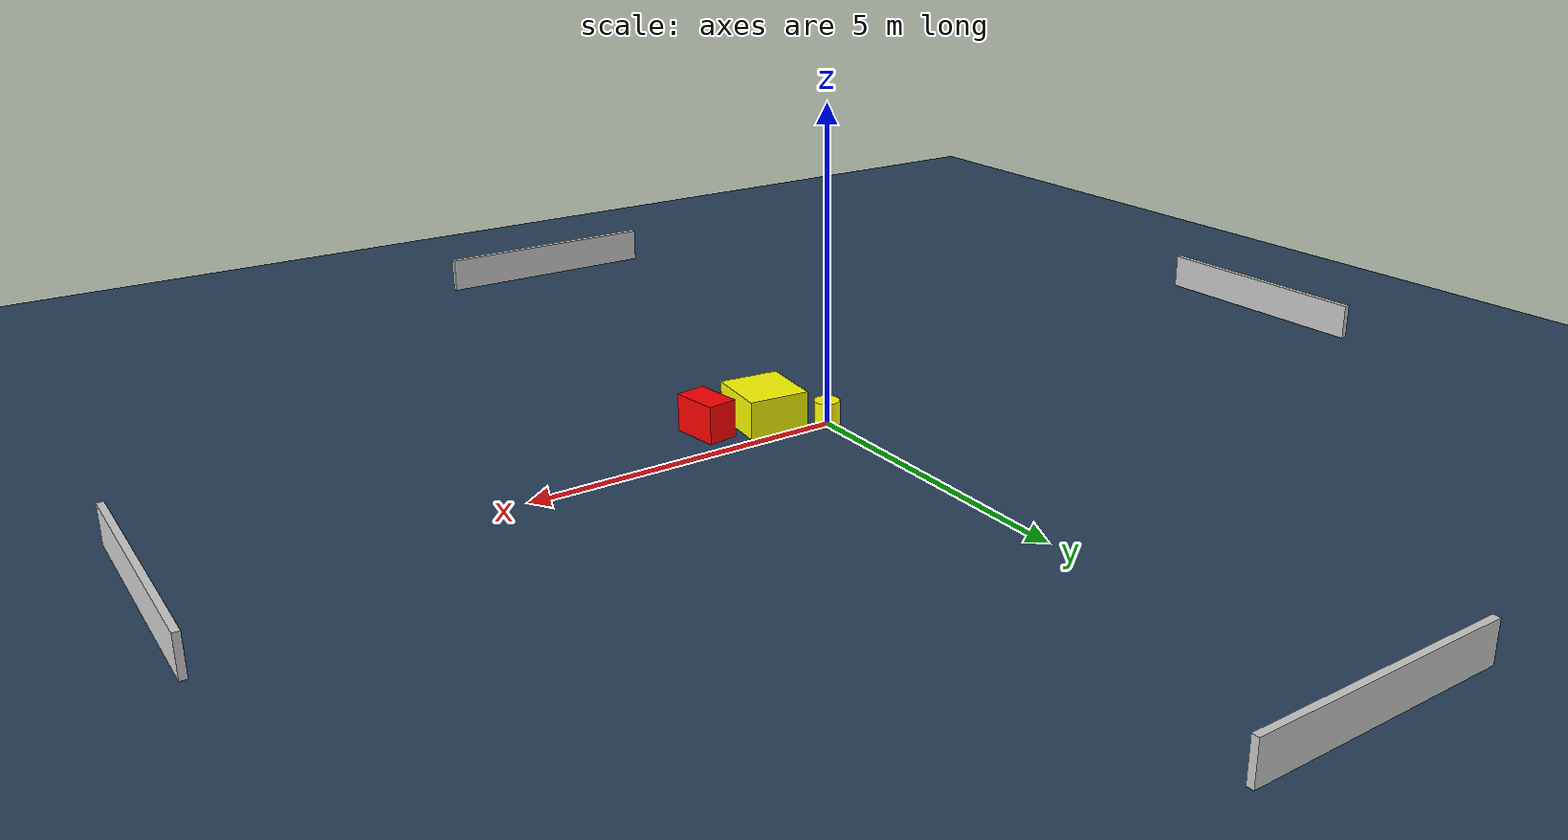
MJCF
<?xml version="1.0" ?>
<mujoco model="generated_environment">
  <option timestep="0.01" integrator="RK4" cone="elliptic"/>
  <default>
    <geom density="1"/>
  </default>
  <asset>
    <texture builtin="gradient" height="3072" name="skybox" rgb1="0.3 0.5 0.7" rgb2="0 0 0" type="skybox" width="512"/>
    <texture builtin="checker" height="300" name="groundplane" rgb1="0.2 0.3 0.4" rgb2="0.1 0.2 0.3" type="2d" width="300"/>
    <material name="groundplane" reflectance="0.2" texrepeat="5 5" texture="groundplane"/>
  </asset>
  <worldbody>
    <light dir="0 0 -1" directional="true" pos="0 0 1.5"/>
    <geom condim="3" friction="0.5 0.005 0.001" material="groundplane" name="floor" pos="0 0 0" size="0 0 0.05" type="plane"/>
    <body name="walls">
      <geom name="wall_1" condim="4" pos="-10.0 0.0 0.3" rgba="0.800000011920929 0.800000011920929 0.800000011920929 1.0" size="0.05 2.0 0.3" type="box"/>
      <geom name="wall_2" condim="4" pos="10.0 0.0 0.3" rgba="0.800000011920929 0.800000011920929 0.800000011920929 1.0" size="0.05 2.0 0.3" type="box"/>
      <geom name="wall_3" condim="4" pos="0.0 -10.0 0.3" rgba="0.800000011920929 0.800000011920929 0.800000011920929 1.0" size="2.0 0.05 0.3" type="box"/>
      <geom name="wall_4" condim="4" pos="0.0 10.0 0.3" rgba="0.800000011920929 0.800000011920929 0.800000011920929 1.0" size="2.0 0.05 0.3" type="box"/>
    </body>
    <body name="robot">
      <joint name="joint_x" type="slide" pos="0 0 0" axis="1 0 0"/>
      <joint name="joint_y" type="slide" pos="0 0 0" axis="0 1 0"/>
      <geom name="robot" type="cylinder" pos="0.0 0.0 0.2" size="0.2 0.2 0.0" mass="5.0" friction="1.0 0.005 0.0001" condim="4" rgba="1.0 1.0 0.0 1.0"/>
    </body>
    <body name="obstacle_1_movable">
      <geom name="obstacle_1_movable" condim="4" pos="0.7665113039383133 -0.6039748880344609 0.3" euler="0 0 84.00611889712516" friction="0.0 0.005 0.001" rgba="1.0 1.0 0.0 1.0" size="0.5239727676605863 0.48202013265259613 0.3" type="box" mass="0.1"/>
      <joint type="free"/>
    </body>
    <body name="obstacle_2_static">
      <geom name="obstacle_2_static" condim="4" pos="1.7144486152426859 -0.7460905523284652 0.3" euler="0 0 7.751384665450511" friction="0.0 0.005 0.001" rgba="1.0 0.0 0.0 1.0" size="0.24047151230479002 0.39328539131574414 0.3" type="box"/>
    </body>
  </worldbody>
  <actuator>
    <motor name="actuator_x" joint="joint_x" gear="1" ctrlrange="-1 1"/>
    <motor name="actuator_y" joint="joint_y" gear="1" ctrlrange="-1 1"/>
  </actuator>
</mujoco>
